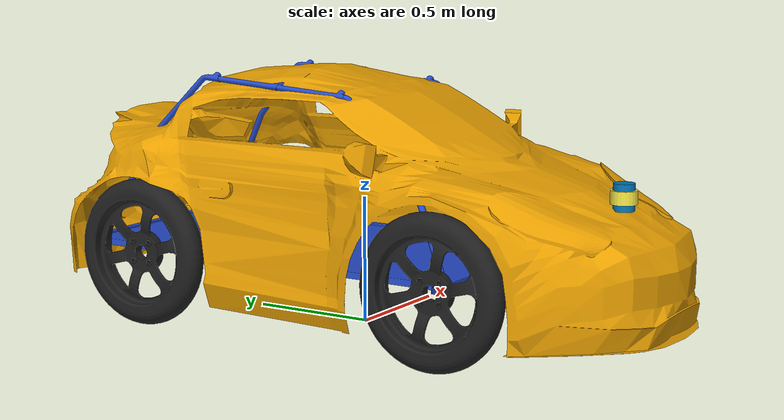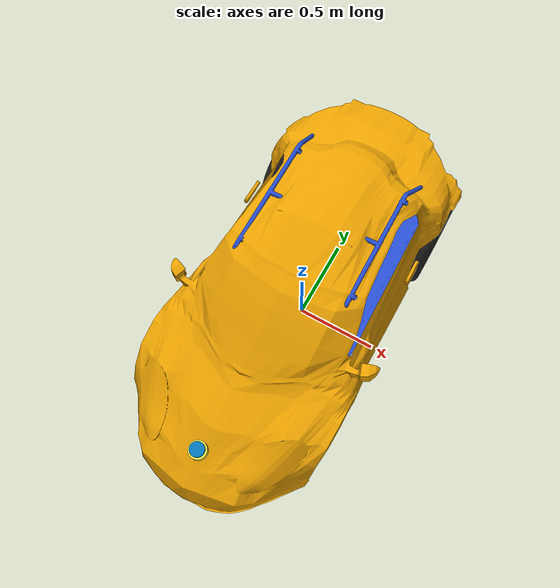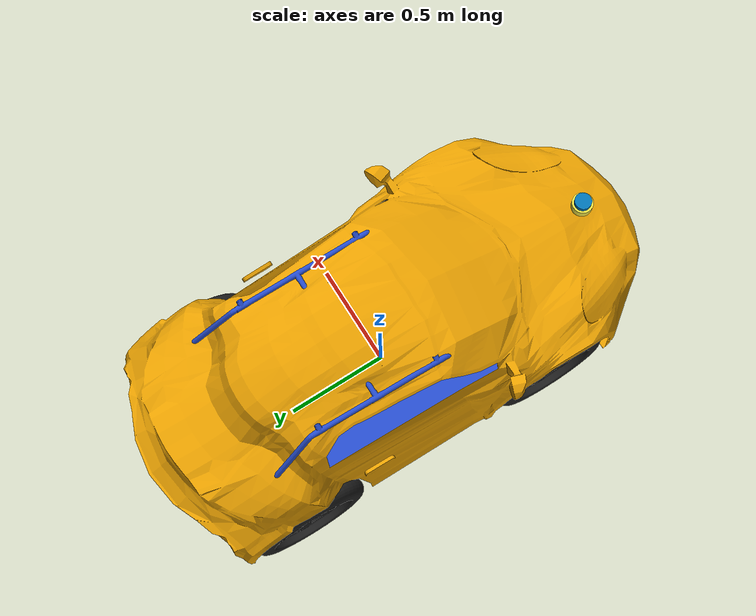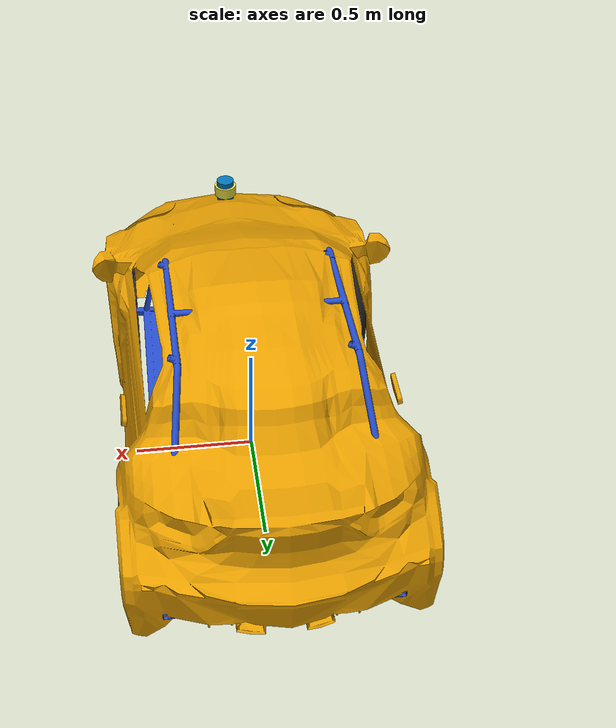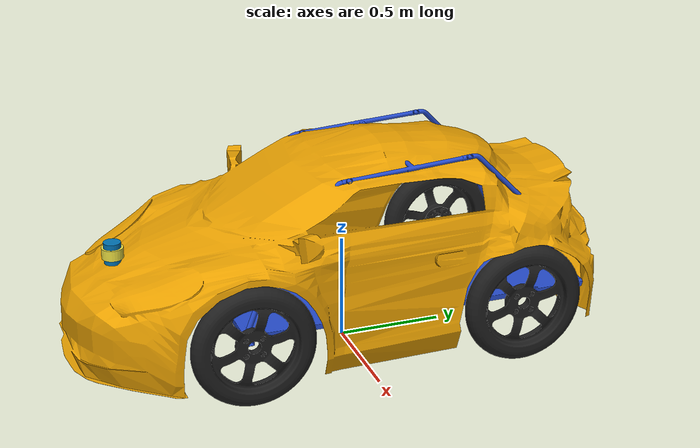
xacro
<?xml version="1.0"?>

<robot xmlns:xacro="http://ros.org/wiki/xacro" name="astrid">

    <xacro:include filename="$(find astrid_description)/xacro/macros.xacro" />

    <link name="base_link">
        <inertial>
            <mass value="1" />
            <inertia ixx="0.001" ixy="0.0" ixz="0.0" iyy="0.001" iyz="0.0" izz="0.001" />
        </inertial>
    </link>
    <joint name="base_link_connection" type="fixed">
        <parent link="base_link" />
        <child link="chassis" />
        <axis xyz="1 0 0" />
    </joint>

    <link name="chassis">
        <visual>
            <xacro:chassis_geometry />
        </visual>

        <collision name="chassis">
            <origin xyz="0 0.0 0.8" rpy="0 0 0" />
            <geometry>
                <box size="1 2.2 0.4" />
            </geometry>
        </collision>

        <collision name="front_bumper">
            <origin xyz="0 -1.2 0.3" rpy="0.0 0.0 1.57" />
            <geometry>
                <box size="0.5 0.9 0.408910" />
            </geometry>
        </collision>

        <collision name="right_left_window">
            <origin xyz="0 0.05 0.3" rpy="0.0 0.0 1.57" />
            <geometry>
                <box size="0.6 1.3 0.45" />
            </geometry>
        </collision>

        <collision name="back_bumper">
            <origin xyz="0.0 1.15 0.36" rpy="0.0 0.0 1.57" />
            <geometry>
                <box size="0.3 1.1 0.3" />
            </geometry>
        </collision>

        <inertial>
            <xacro:chassis_inertial_params />
        </inertial>
    </link>

    <link name="fl_axle">
        <inertial>
            <xacro:steering_hinge_inertial_params />
        </inertial>
    </link>

    <link name="fr_axle">
        <inertial>
            <xacro:steering_hinge_inertial_params />
        </inertial>
    </link>

    <link name="front_left_wheel">
        <inertial>
            <xacro:left_wheels_inertial_params />
        </inertial>
        <collision name="front_left_wheel_collision">
            <origin xyz="0 0 0" rpy="0 1.57 0" />
            <geometry>
                <cylinder radius="0.3" length="0.2" />
            </geometry>
        </collision>
        <visual>
            <xacro:front_left_wheel_geometry />
        </visual>
    </link>

    <link name="front_right_wheel">
        <inertial>
            <xacro:right_wheels_inertial_params />
        </inertial>
        <collision name="front_right_wheel_collision">
            <origin xyz="0 0 0" rpy="0 1.57 0" />
            <geometry>
                <cylinder radius="0.3" length="0.2" />
            </geometry>
        </collision>
        <visual>
            <xacro:front_right_wheel_geometry />
        </visual>
    </link>
    <link name="rear_left_wheel">
        <inertial>
            <xacro:left_wheels_inertial_params />
        </inertial>
        <collision name="rear_left_wheel_collision">
            <origin xyz="0 0 0" rpy="0 1.57 0" />
            <geometry>
                <cylinder radius="0.3" length="0.2" />
            </geometry>
        </collision>
        <visual>
            <xacro:rear_left_wheel_geometry />
        </visual>
    </link>
    <link name="rear_right_wheel">
        <inertial>
            <xacro:right_wheels_inertial_params />
        </inertial>
        <collision name="rear_right_wheel_collision">
            <origin xyz="0 0 0" rpy="0 1.57 0" />
            <geometry>
                <cylinder radius="0.3" length="0.2" />
            </geometry>
        </collision>
        <visual>
          <xacro:rear_right_wheel_geometry />
        </visual>
    </link>
    <!-- steering -->

    <link name="shell">
        <visual>
            <geometry>
                <mesh filename="package://astrid_description/meshes/Kabuk.stl" />
            </geometry>
        </visual>
        <inertial>
            <origin xyz="0.0 0.0 0.0" rpy="0.0 0.0 0.0" />
            <mass value="1.0" />
            <inertia ixx="0.0" ixy="0.0" ixz="0.0" iyy="0.0" iyz="0.0" izz="0.0" />
        </inertial>
    </link>

    <joint name="chassis_shell_joint" type="fixed">
        <origin xyz="0.000018 0.327994 0.45156" rpy="0.0 0.0 0.0" />
        <parent link="chassis" />
        <child link="shell" />
        <axis xyz="0.0 0.0 0.0" />
        <limit lower="0.0" upper="0.0" effort="0.0" velocity="0.0" />
    </joint>
    <!-- steering joint -->

    <joint name="front_left_steer_joint" type="continuous">
        <parent link="chassis" />
        <child link="fl_axle" />
        <origin xyz="0.508557 -0.593403 0.290461" rpy="0 0 0" />
        <axis xyz="0 0 1" />
        <limit lower="-0.8727" upper="0.8727" effort="10000000" velocity="1000000" />
    </joint>
    <joint name="front_right_steer_joint" type="continuous">
        <parent link="chassis" />
        <child link="fr_axle" />
        <origin xyz="-0.508521 -0.598778  0.290461" rpy="0 0 0" />
        <axis xyz="0 0 1" />
        <limit lower="-0.8727" upper="0.8727" effort="10000000" velocity="1000000" />
    </joint>
    <joint name="front_left_wheel_joint" type="continuous">
        <parent link="fl_axle" />
        <child link="front_left_wheel" />
        <origin xyz="0 0 0" rpy="0 0 0" />
        <axis xyz="1 0 0" />
    </joint>
    <joint name="front_right_wheel_joint" type="continuous">
        <parent link="fr_axle" />
        <child link="front_right_wheel" />
        <origin xyz="0 0 0" rpy="0 0 0" />
        <axis xyz="1 0 0" />
    </joint>
    <joint name="rear_left_wheel_joint" type="continuous">
        <parent link="chassis" />
        <child link="rear_left_wheel" />
        <origin xyz="0.508557 0.706205 0.290461" rpy="0 0 0" />
        <axis xyz="1 0 0" />
    </joint>
    <joint name="rear_right_wheel_joint" type="continuous">
        <parent link="chassis" />
        <child link="rear_right_wheel" />
        <origin xyz="-0.508521  0.706205 0.290461" rpy="0 0 0" />
        <axis xyz="1 0 0" />
    </joint>

    <!-- sensor links and fixed joints -->

    <!-- Kamera Link-->
    <link name="front_camera_link">
        <inertial>
          <mass value="1"/>
          <inertia ixx="0.001" ixy="0.0" ixz="0.0" iyy="0.001" iyz="0.0" izz="0.001"/>
        </inertial>
      </link>
      <joint name="front_camera_joint" type="fixed">
        <parent link="chassis"/>
        <child link="front_camera_link"/>
        <origin xyz="0 -0.4 1.4" rpy="0 0.05 -1.5707"/>
      </joint>

      <link name="front_camera_link_optical">
        <inertial>
          <mass value="1"/>
          <inertia ixx="0.001" ixy="0.0" ixz="0.0" iyy="0.001" iyz="0.0" izz="0.001"/>
        </inertial>
      </link>
      <joint name="front_camera_optical_joint" type="fixed">
        <origin xyz="0 0 0" rpy="-1.5707 0 -1.5707"/>
        <parent link="front_camera_link"/>
        <child link="front_camera_link_optical"/>
      </joint>

    <!-- Laser Base Link-->

    <joint name="laser_base_joint" type="fixed">
        <origin xyz="-0.000018 -1.09322 0.601558" rpy="0.0 0.0 0.0" />
        <parent link="chassis" />
        <child link="laser_base" />
        <axis xyz="0 0 1" />
    </joint>

    <link name="laser_base">
        <visual>
            <xacro:laser_base_geometry />
        </visual>
    </link>

    <joint name="laser_base_lidar_joint" type="fixed">
        <origin xyz="0 0 0" rpy="0.0 0.0 0.0" />
        <parent link="laser_base" />
        <child link="lidar" />
        <axis xyz="0.0 0.0 0.0" />
        <limit lower="0.0" upper="0.0" effort="0.0" velocity="0.0" />
    </joint>

    <!-- Lidar Link-->
    <link name="lidar">
        <visual>
            <xacro:lidar_geometry />
        </visual>
        <inertial>
            <xacro:laser_inertial_params />
        </inertial>
    </link>

    <!-- transmission -->

    <transmission name="rear_right_wheel_trans">
        <type>transmission_interface/SimpleTransmission</type>
        <joint name="rear_left_wheel_joint">
            <hardwareInterface>hardware_interface/EffortJointInterface</hardwareInterface>
        </joint>
        <actuator name="motor_move">
            <hardwareInterface>hardware_interface/EffortJointInterface</hardwareInterface>
            <mechanicalReduction>1</mechanicalReduction>
        </actuator>
    </transmission>

    <transmission name="front_right_wheel_trans">
        <type>transmission_interface/SimpleTransmission</type>
        <joint name="front_right_wheel_joint">
            <hardwareInterface>hardware_interface/EffortJointInterface</hardwareInterface>
        </joint>
        <actuator name="motor_aci">
            <hardwareInterface>hardware_interface/EffortJointInterface</hardwareInterface>
            <mechanicalReduction>1</mechanicalReduction>
        </actuator>
    </transmission>

    <xacro:include filename="$(find astrid_description)/xacro/astrid.gazebo" />
    <xacro:include filename="$(find astrid_description)/xacro/materials.xacro" />

</robot>

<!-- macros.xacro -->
<robot xmlns:xacro="http://www.ros.org/wiki/xacro" name="astrid">
  <!-- Tanimlamalar-->

  <xacro:property name="base_radius" value="0.05" />
  <xacro:property name="base_height" value="0.05" />
  <xacro:property name="laz_radius" value="0.04" />
  <xacro:property name="laz_height" value="0.1" />

  <!-- Inertial Paramete Macros -->

  <xacro:macro name="chassis_inertial_params">
    <origin xyz="0.0 0.0 0.0" rpy="0.0 0.0 0.0" />
    <mass value="16.0" />
    <inertia ixx="2.10584732" ixy="0.0" ixz="0.0" iyy="4.51175401" iyz="0.0" izz="5.25511563" />
  </xacro:macro>

  <xacro:macro name="shell_inertial_params">
    <origin xyz="0.0 0.0 0.0" rpy="0.0 0.0 0.0" />
    <mass value="1.0" />
    <inertia ixx="0.0" ixy="0.0" ixz="0.0" iyy="0.0" iyz="0.0" izz="0.0" />
  </xacro:macro>

  <xacro:macro name="left_wheels_inertial_params">
    <origin xyz="0.0 0.0 0.0" rpy="0.0 0.0 0.0" />
    <mass value="1.0" />
    <inertia ixx="0.18320651" ixy="0.0" ixz="0.0" iyy="0.1832065" iyz="0.0" izz="0.35415911" />
  </xacro:macro>

  <xacro:macro name="right_wheels_inertial_params">
    <origin xyz="0.0 0.0 0.0" rpy="0.0 0.0 0.0" />
    <mass value="1.0" />
    <inertia ixx="0.18320651" ixy="0.0" ixz="0.0" iyy="0.1832065" iyz="0.0" izz="0.35415911" />
  </xacro:macro>

  <xacro:macro name="steering_hinge_inertial_params">
    <origin xyz="0.0 0.0 0.0" rpy="0.0 0.0 0.0" />
    <mass value="1.0" />
    <inertia ixx="0.004" ixy="0.0" ixz="0.0" iyy="0.004" iyz="0.0" izz="0.004" />
  </xacro:macro>

  <xacro:macro name="camera_inertial_params">
    <mass value="1e-5" />
    <origin xyz="0 0 0" rpy="0 0 0"/>
    <inertia ixx="1e-6" ixy="0" ixz="0" iyy="1e-6" iyz="0" izz="1e-6" />
  </xacro:macro>

  <xacro:macro name="laser_inertial_params">
      <mass value="1e-5" />
      <origin xyz="0 0 0" rpy="0 0 0"/>
      <inertia ixx="1e-6" ixy="0" ixz="0" iyy="1e-6" iyz="0" izz="1e-6" />
  </xacro:macro>

  <!-- Null inertial element. This is needed to make the model work with
       Gazebo. -->
  <xacro:macro name="null_inertial">
    <inertial>
      <mass value="0.1" />
      <inertia ixx="0.001" ixy="0" ixz="0" iyy="0.001" iyz="0" izz="0.001" />
    </inertial>
  </xacro:macro>

  <!-- Geometry Macros-->

  <!-- chassis-->
  <xacro:macro name="chassis_geometry">
    <origin xyz="0 0 0" rpy="0 0 0" />
    <geometry>
      <mesh filename="package://astrid_description/meshes/iskelet.stl" />
    </geometry>
  </xacro:macro>

  <!-- shell-->
  <xacro:macro name="shell_geometry">
    <origin xyz="0 0 0" rpy="0 0 0" />
    <geometry>
      <mesh filename="package://astrid_description/meshes/Kabuk.stl" />
    </geometry>
  </xacro:macro>

  <!-- Sag Arka Teker-->
  <xacro:macro name="rear_right_wheel_geometry">
    <origin xyz="0 0 0" rpy="0 0 0" />
    <geometry>
      <mesh filename="package://astrid_description/meshes/tekerleksag.STL" />
    </geometry>
  </xacro:macro>

  <xacro:macro name="rear_left_wheel_geometry">
    <origin xyz="0 0 0" rpy="0 0 0" />
    <geometry>
      <mesh filename="package://astrid_description/meshes/tekerleksol.STL" />
    </geometry>
  </xacro:macro>

  <!-- Sag Hinge -->
  <xacro:macro name="right_steering_hinge_geometry">
    <origin xyz="0 0 0" rpy="0 0 0" />
    <geometry>
      <mesh filename="package://astrid_description/meshes/hinge.STL" />
    </geometry>
  </xacro:macro>

  <!-- Sol Hinge -->
  <xacro:macro name="left_steering_hinge_geometry">
    <origin xyz="0 0 0" rpy="0 0 0" />
    <geometry>
      <mesh filename="package://astrid_description/meshes/hinge.STL" />
    </geometry>
  </xacro:macro>

  <!-- Sag On Teker-->
  <xacro:macro name="front_right_wheel_geometry">
    <origin xyz="0 0 0" rpy="0 0 0" />
    <geometry>
      <mesh filename="package://astrid_description/meshes/tekerleksag.STL" />
    </geometry>
  </xacro:macro>

  <!-- sol On Teker-->
  <xacro:macro name="front_left_wheel_geometry">
    <origin xyz="0 0 0" rpy="0 0 0" />
    <geometry>
      <mesh filename="package://astrid_description/meshes/tekerleksol.STL" />
    </geometry>
  </xacro:macro>

  <!-- Laser Base-->
  <xacro:macro name="laser_base_geometry">

    <geometry>
      <cylinder length="${base_height}" radius="${base_radius}" />
    </geometry>
  </xacro:macro>

  <!-- Lidar-->
  <xacro:macro name="lidar_geometry">

    <geometry>
      <cylinder length="${laz_height}" radius="${laz_radius}" />
    </geometry>
  </xacro:macro>

  <!-- Kamera -->
  <xacro:macro name="camera_geometry">

    <origin xyz="0 0 0" rpy="0 0 0" />
    <geometry>
      <box size="0.033 0.175 0.030" />
    </geometry>
    <material name="red" />
  </xacro:macro>

  <!-- Collision Macros -->

  <xacro:macro name="left_wheels_collision_geometry">
    <origin xyz="0.0 0.0 0.0" rpy="0.0 0.0 0.0" />
    <geometry></geometry>
  </xacro:macro>

  <xacro:macro name="right_wheels_collision_geometry">
    <origin xyz="0.0 0.0 0.0" rpy="0.0 0.0 0.0" />
    <geometry></geometry>

  </xacro:macro>
</robot>
